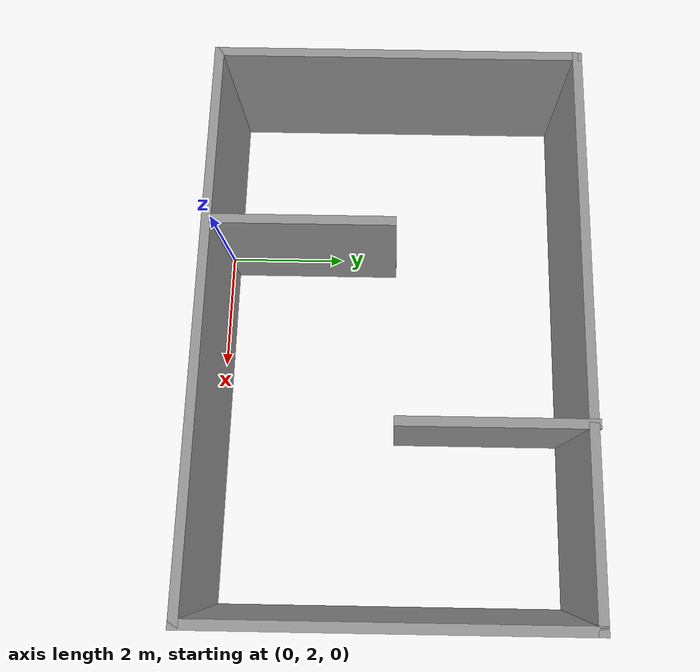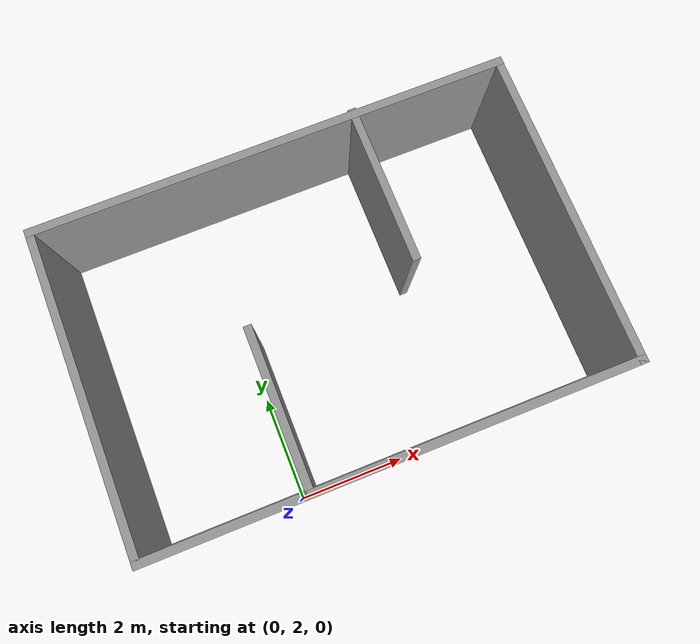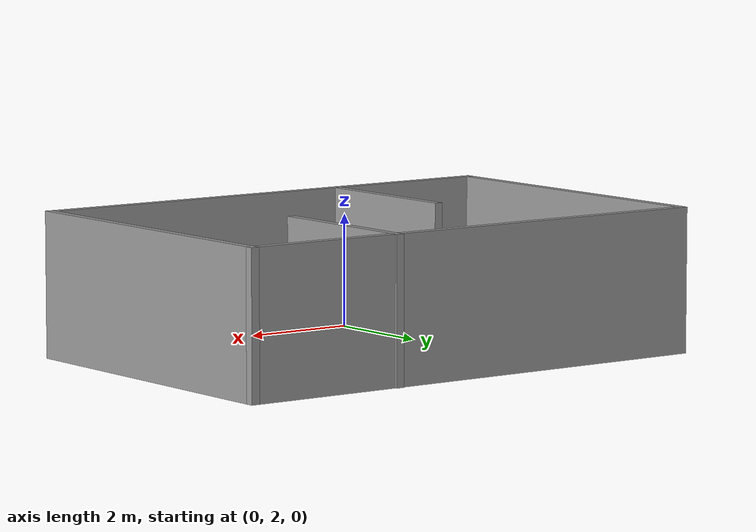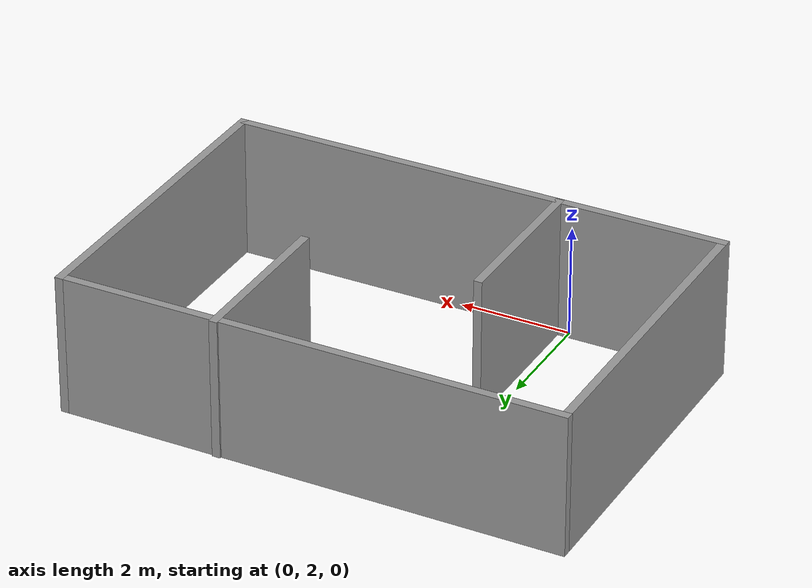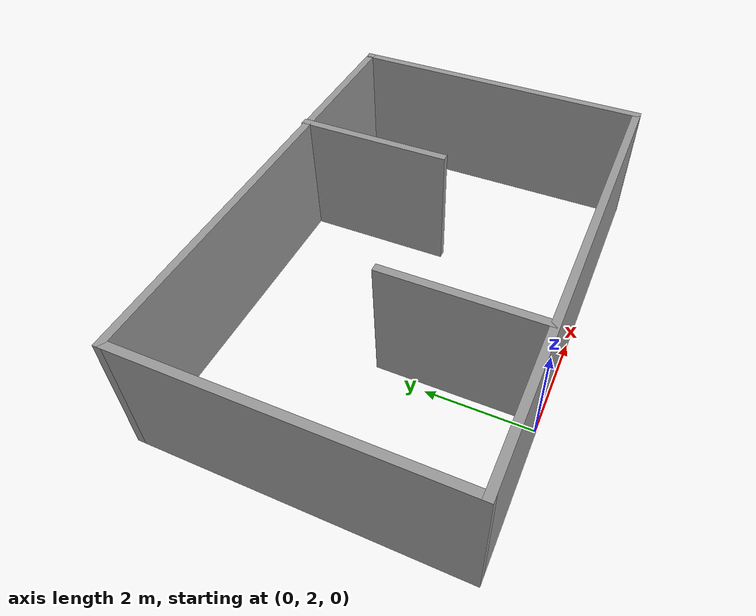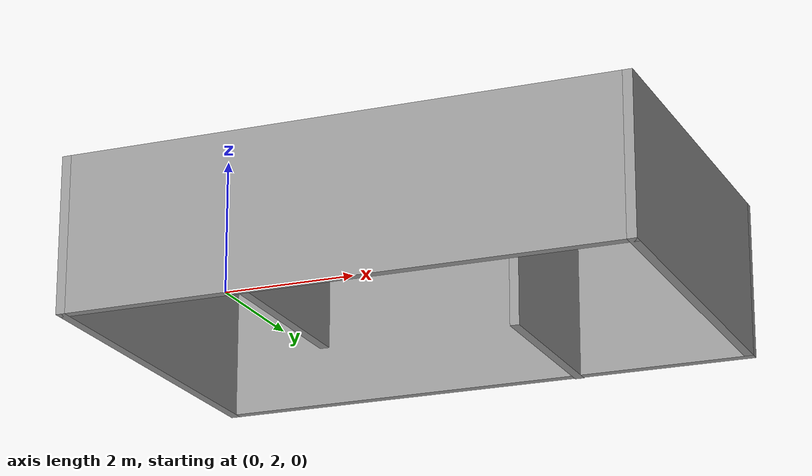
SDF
<?xml version='1.0'?>
<sdf version='1.6'>
  <model name='Parkur_Model'>
    <pose frame=''>1.72056 4.00652 0 0 -0 0</pose>
    <link name='Wall_66'>
      <collision name='Wall_66_Collision'>
        <geometry>
          <box>
            <size>9 0.15 2.5</size>
          </box>
        </geometry>
        <pose frame=''>0 0 1.25 0 -0 0</pose>
      </collision>
      <visual name='Wall_66_Visual'>
        <pose frame=''>0 0 1.25 0 -0 0</pose>
        <geometry>
          <box>
            <size>9 0.15 2.5</size>
          </box>
        </geometry>
        <material>
          <script>
            <uri>file://media/materials/scripts/gazebo.material</uri>
            <name>Gazebo/Grey</name>
          </script>
          <ambient>1 1 1 1</ambient>
        </material>
        <meta>
          <layer>0</layer>
        </meta>
      </visual>
      <pose frame=''>0 -1.95012 0 0 -0 0</pose>
    </link>
    <link name='Wall_70'>
      <collision name='Wall_70_Collision'>
        <geometry>
          <box>
            <size>6 0.15 2.5</size>
          </box>
        </geometry>
        <pose frame=''>0 0 1.25 0 -0 0</pose>
      </collision>
      <visual name='Wall_70_Visual'>
        <pose frame=''>0 0 1.25 0 -0 0</pose>
        <geometry>
          <box>
            <size>6 0.15 2.5</size>
          </box>
        </geometry>
        <material>
          <script>
            <uri>file://media/materials/scripts/gazebo.material</uri>
            <name>Gazebo/Grey</name>
          </script>
          <ambient>1 1 1 1</ambient>
        </material>
        <meta>
          <layer>0</layer>
        </meta>
      </visual>
      <pose frame=''>4.425 0.974876 0 0 -0 1.5708</pose>
    </link>
    <link name='Wall_71'>
      <collision name='Wall_71_Collision'>
        <geometry>
          <box>
            <size>9 0.15 2.5</size>
          </box>
        </geometry>
        <pose frame=''>0 0 1.25 0 -0 0</pose>
      </collision>
      <visual name='Wall_71_Visual'>
        <pose frame=''>0 0 1.25 0 -0 0</pose>
        <geometry>
          <box>
            <size>9 0.15 2.5</size>
          </box>
        </geometry>
        <material>
          <script>
            <uri>file://media/materials/scripts/gazebo.material</uri>
            <name>Gazebo/Grey</name>
          </script>
          <ambient>1 1 1 1</ambient>
        </material>
        <meta>
          <layer>0</layer>
        </meta>
      </visual>
      <pose frame=''>0 3.89988 0 0 -0 3.14159</pose>
    </link>
    <link name='Wall_82'>
      <collision name='Wall_82_Collision'>
        <geometry>
          <box>
            <size>3 0.15 2.5</size>
          </box>
        </geometry>
        <pose frame=''>0 0 1.25 0 -0 0</pose>
      </collision>
      <visual name='Wall_82_Visual'>
        <pose frame=''>0 0 1.25 0 -0 0</pose>
        <geometry>
          <box>
            <size>3 0.15 2.5</size>
          </box>
        </geometry>
        <material>
          <script>
            <uri>file://media/materials/scripts/gazebo.material</uri>
            <name>Gazebo/Grey</name>
          </script>
          <ambient>1 1 1 1</ambient>
        </material>
        <meta>
          <layer>0</layer>
        </meta>
      </visual>
      <pose frame=''>1.60387 2.50652 0 0 -0 -1.5708</pose>
    </link>
    <link name='Wall_84'>
      <collision name='Wall_84_Collision'>
        <geometry>
          <box>
            <size>3 0.15 2.5</size>
          </box>
        </geometry>
        <pose frame=''>0 0 1.25 0 -0 0</pose>
      </collision>
      <visual name='Wall_84_Visual'>
        <pose frame=''>0 0 1.25 0 -0 0</pose>
        <geometry>
          <box>
            <size>3 0.15 2.5</size>
          </box>
        </geometry>
        <material>
          <script>
            <uri>file://media/materials/scripts/gazebo.material</uri>
            <name>Gazebo/Grey</name>
          </script>
          <ambient>1 1 1 1</ambient>
        </material>
        <meta>
          <layer>0</layer>
        </meta>
      </visual>
      <pose frame=''>-1.49187 -0.502656 0 0 -0 1.5708</pose>
    </link>
    <link name='Wall_95'>
      <collision name='Wall_95_Collision'>
        <geometry>
          <box>
            <size>6 0.15 2.5</size>
          </box>
        </geometry>
        <pose frame=''>0 0 1.25 0 -0 0</pose>
      </collision>
      <visual name='Wall_95_Visual'>
        <pose frame=''>0 0 1.25 0 -0 0</pose>
        <geometry>
          <box>
            <size>6 0.15 2.5</size>
          </box>
        </geometry>
        <material>
          <script>
            <uri>file://media/materials/scripts/gazebo.material</uri>
            <name>Gazebo/Grey</name>
          </script>
          <ambient>1 1 1 1</ambient>
        </material>
        <meta>
          <layer>0</layer>
        </meta>
      </visual>
      <pose frame=''>-4.425 0.974876 0 0 -0 -1.5708</pose>
    </link>
    <static>1</static>
  </model>
</sdf>
